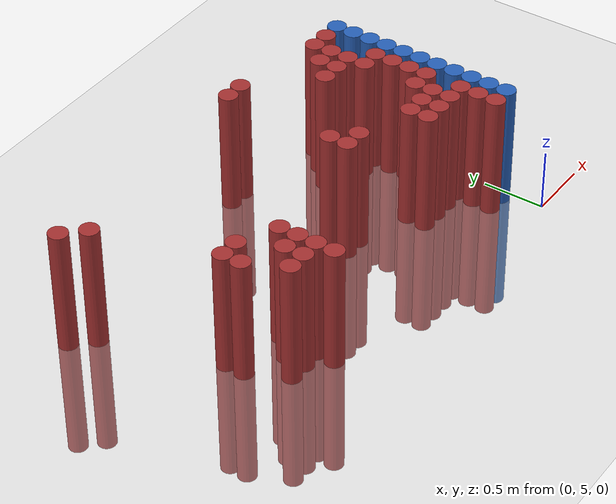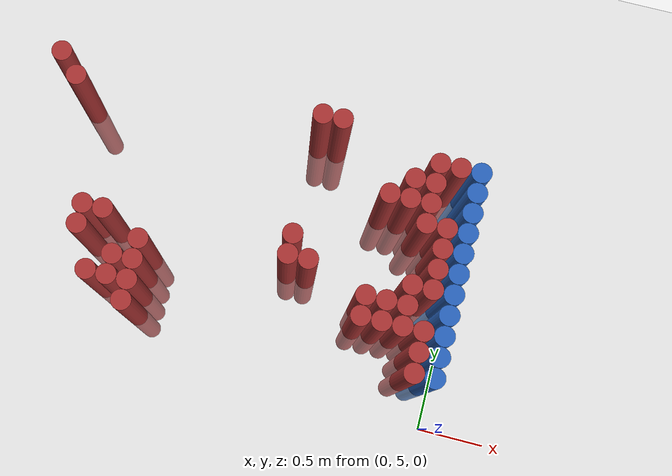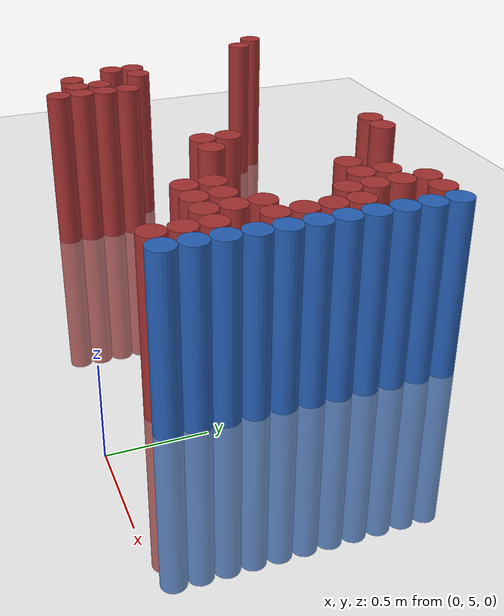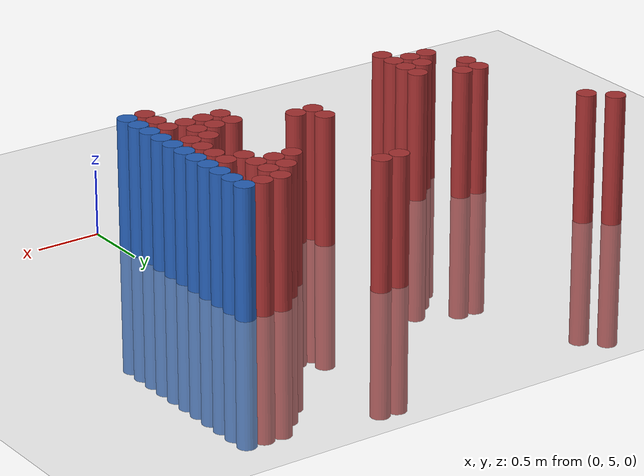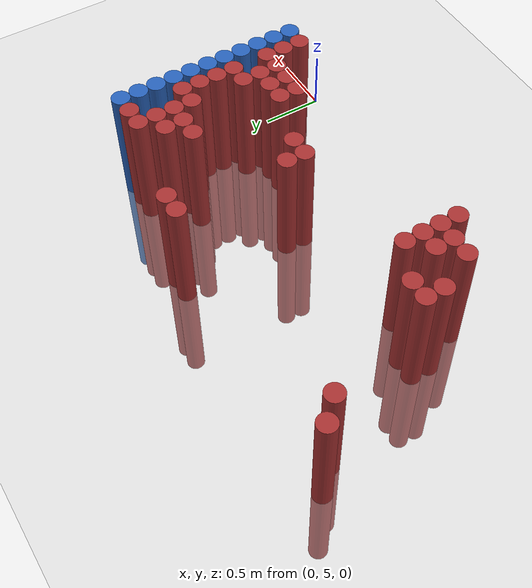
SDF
<sdf version="1.6">
 <world name="default">
  <model name="ground_plane">
   <static>1</static>
   <link name="link">
    <collision name="collision">
     <geometry><plane><normal>0 0 1</normal><size>100 100</size></plane></geometry>
     <surface><friction><ode><mu>100</mu><mu2>50</mu2></ode></friction></surface>
    </collision>
    <visual name="visual">
     <cast_shadows>0</cast_shadows>
     <geometry><plane><normal>0 0 1</normal><size>100 100</size></plane></geometry>
     <material>
      <script><uri>file://media/materials/scripts/gazebo.material</uri><name>Gazebo/Grey</name></script>
     </material>
    </visual>
   </link>
  </model>
  <model name="unit_cylinder_150">
   <static>1</static>
   <pose>-3.225000 6.975000 0.000000 0.000000 0.000000 0.000000</pose>
   <link name="link">
    <inertial>
     <mass>1</mass>
     <inertia><ixx>0.145833</ixx><ixy>0</ixy><ixz>0</ixz><iyy>0.145833</iyy><iyz>0</iyz><izz>0.125</izz></inertia>
    </inertial>
    <collision name="collision">
     <geometry><cylinder><radius>0.075000</radius><length>2</length></cylinder></geometry>
    </collision>
    <visual name="visual">
     <geometry><cylinder><radius>0.075000</radius><length>2</length></cylinder></geometry>
     <material>
      <ambient>0.648000 0.192000 0.192000 1</ambient>
      <diffuse>0.648000 0.192000 0.192000 1</diffuse>
     </material>
     <material>
      <script><name>Gazebo/Grey</name><uri>file://media/materials/scripts/gazebo.material</uri></script>
     </material>
    </visual>
   </link>
  </model>
  <model name="unit_cylinder_151">
   <static>1</static>
   <pose>-3.075000 6.825000 0.000000 0.000000 0.000000 0.000000</pose>
   <link name="link">
    <inertial>
     <mass>1</mass>
     <inertia><ixx>0.145833</ixx><ixy>0</ixy><ixz>0</ixz><iyy>0.145833</iyy><iyz>0</iyz><izz>0.125</izz></inertia>
    </inertial>
    <collision name="collision">
     <geometry><cylinder><radius>0.075000</radius><length>2</length></cylinder></geometry>
    </collision>
    <visual name="visual">
     <geometry><cylinder><radius>0.075000</radius><length>2</length></cylinder></geometry>
     <material>
      <ambient>0.648000 0.192000 0.192000 1</ambient>
      <diffuse>0.648000 0.192000 0.192000 1</diffuse>
     </material>
     <material>
      <script><name>Gazebo/Grey</name><uri>file://media/materials/scripts/gazebo.material</uri></script>
     </material>
    </visual>
   </link>
  </model>
  <model name="unit_cylinder_152">
   <static>1</static>
   <pose>-2.775000 5.775000 0.000000 0.000000 0.000000 0.000000</pose>
   <link name="link">
    <inertial>
     <mass>1</mass>
     <inertia><ixx>0.145833</ixx><ixy>0</ixy><ixz>0</ixz><iyy>0.145833</iyy><iyz>0</iyz><izz>0.125</izz></inertia>
    </inertial>
    <collision name="collision">
     <geometry><cylinder><radius>0.075000</radius><length>2</length></cylinder></geometry>
    </collision>
    <visual name="visual">
     <geometry><cylinder><radius>0.075000</radius><length>2</length></cylinder></geometry>
     <material>
      <ambient>0.648000 0.192000 0.192000 1</ambient>
      <diffuse>0.648000 0.192000 0.192000 1</diffuse>
     </material>
     <material>
      <script><name>Gazebo/Grey</name><uri>file://media/materials/scripts/gazebo.material</uri></script>
     </material>
    </visual>
   </link>
  </model>
  <model name="unit_cylinder_153">
   <static>1</static>
   <pose>-2.775000 5.925000 0.000000 0.000000 0.000000 0.000000</pose>
   <link name="link">
    <inertial>
     <mass>1</mass>
     <inertia><ixx>0.145833</ixx><ixy>0</ixy><ixz>0</ixz><iyy>0.145833</iyy><iyz>0</iyz><izz>0.125</izz></inertia>
    </inertial>
    <collision name="collision">
     <geometry><cylinder><radius>0.075000</radius><length>2</length></cylinder></geometry>
    </collision>
    <visual name="visual">
     <geometry><cylinder><radius>0.075000</radius><length>2</length></cylinder></geometry>
     <material>
      <ambient>0.648000 0.192000 0.192000 1</ambient>
      <diffuse>0.648000 0.192000 0.192000 1</diffuse>
     </material>
     <material>
      <script><name>Gazebo/Grey</name><uri>file://media/materials/scripts/gazebo.material</uri></script>
     </material>
    </visual>
   </link>
  </model>
  <model name="unit_cylinder_154">
   <static>1</static>
   <pose>-2.625000 5.475000 0.000000 0.000000 0.000000 0.000000</pose>
   <link name="link">
    <inertial>
     <mass>1</mass>
     <inertia><ixx>0.145833</ixx><ixy>0</ixy><ixz>0</ixz><iyy>0.145833</iyy><iyz>0</iyz><izz>0.125</izz></inertia>
    </inertial>
    <collision name="collision">
     <geometry><cylinder><radius>0.075000</radius><length>2</length></cylinder></geometry>
    </collision>
    <visual name="visual">
     <geometry><cylinder><radius>0.075000</radius><length>2</length></cylinder></geometry>
     <material>
      <ambient>0.648000 0.192000 0.192000 1</ambient>
      <diffuse>0.648000 0.192000 0.192000 1</diffuse>
     </material>
     <material>
      <script><name>Gazebo/Grey</name><uri>file://media/materials/scripts/gazebo.material</uri></script>
     </material>
    </visual>
   </link>
  </model>
  <model name="unit_cylinder_155">
   <static>1</static>
   <pose>-2.625000 5.925000 0.000000 0.000000 0.000000 0.000000</pose>
   <link name="link">
    <inertial>
     <mass>1</mass>
     <inertia><ixx>0.145833</ixx><ixy>0</ixy><ixz>0</ixz><iyy>0.145833</iyy><iyz>0</iyz><izz>0.125</izz></inertia>
    </inertial>
    <collision name="collision">
     <geometry><cylinder><radius>0.075000</radius><length>2</length></cylinder></geometry>
    </collision>
    <visual name="visual">
     <geometry><cylinder><radius>0.075000</radius><length>2</length></cylinder></geometry>
     <material>
      <ambient>0.648000 0.192000 0.192000 1</ambient>
      <diffuse>0.648000 0.192000 0.192000 1</diffuse>
     </material>
     <material>
      <script><name>Gazebo/Grey</name><uri>file://media/materials/scripts/gazebo.material</uri></script>
     </material>
    </visual>
   </link>
  </model>
  <model name="unit_cylinder_156">
   <static>1</static>
   <pose>-2.475000 5.475000 0.000000 0.000000 0.000000 0.000000</pose>
   <link name="link">
    <inertial>
     <mass>1</mass>
     <inertia><ixx>0.145833</ixx><ixy>0</ixy><ixz>0</ixz><iyy>0.145833</iyy><iyz>0</iyz><izz>0.125</izz></inertia>
    </inertial>
    <collision name="collision">
     <geometry><cylinder><radius>0.075000</radius><length>2</length></cylinder></geometry>
    </collision>
    <visual name="visual">
     <geometry><cylinder><radius>0.075000</radius><length>2</length></cylinder></geometry>
     <material>
      <ambient>0.648000 0.192000 0.192000 1</ambient>
      <diffuse>0.648000 0.192000 0.192000 1</diffuse>
     </material>
     <material>
      <script><name>Gazebo/Grey</name><uri>file://media/materials/scripts/gazebo.material</uri></script>
     </material>
    </visual>
   </link>
  </model>
  <model name="unit_cylinder_157">
   <static>1</static>
   <pose>-2.475000 5.625000 0.000000 0.000000 0.000000 0.000000</pose>
   <link name="link">
    <inertial>
     <mass>1</mass>
     <inertia><ixx>0.145833</ixx><ixy>0</ixy><ixz>0</ixz><iyy>0.145833</iyy><iyz>0</iyz><izz>0.125</izz></inertia>
    </inertial>
    <collision name="collision">
     <geometry><cylinder><radius>0.075000</radius><length>2</length></cylinder></geometry>
    </collision>
    <visual name="visual">
     <geometry><cylinder><radius>0.075000</radius><length>2</length></cylinder></geometry>
     <material>
      <ambient>0.648000 0.192000 0.192000 1</ambient>
      <diffuse>0.648000 0.192000 0.192000 1</diffuse>
     </material>
     <material>
      <script><name>Gazebo/Grey</name><uri>file://media/materials/scripts/gazebo.material</uri></script>
     </material>
    </visual>
   </link>
  </model>
  <model name="unit_cylinder_158">
   <static>1</static>
   <pose>-2.325000 5.325000 0.000000 0.000000 0.000000 0.000000</pose>
   <link name="link">
    <inertial>
     <mass>1</mass>
     <inertia><ixx>0.145833</ixx><ixy>0</ixy><ixz>0</ixz><iyy>0.145833</iyy><iyz>0</iyz><izz>0.125</izz></inertia>
    </inertial>
    <collision name="collision">
     <geometry><cylinder><radius>0.075000</radius><length>2</length></cylinder></geometry>
    </collision>
    <visual name="visual">
     <geometry><cylinder><radius>0.075000</radius><length>2</length></cylinder></geometry>
     <material>
      <ambient>0.648000 0.192000 0.192000 1</ambient>
      <diffuse>0.648000 0.192000 0.192000 1</diffuse>
     </material>
     <material>
      <script><name>Gazebo/Grey</name><uri>file://media/materials/scripts/gazebo.material</uri></script>
     </material>
    </visual>
   </link>
  </model>
  <model name="unit_cylinder_159">
   <static>1</static>
   <pose>-2.325000 5.475000 0.000000 0.000000 0.000000 0.000000</pose>
   <link name="link">
    <inertial>
     <mass>1</mass>
     <inertia><ixx>0.145833</ixx><ixy>0</ixy><ixz>0</ixz><iyy>0.145833</iyy><iyz>0</iyz><izz>0.125</izz></inertia>
    </inertial>
    <collision name="collision">
     <geometry><cylinder><radius>0.075000</radius><length>2</length></cylinder></geometry>
    </collision>
    <visual name="visual">
     <geometry><cylinder><radius>0.075000</radius><length>2</length></cylinder></geometry>
     <material>
      <ambient>0.648000 0.192000 0.192000 1</ambient>
      <diffuse>0.648000 0.192000 0.192000 1</diffuse>
     </material>
     <material>
      <script><name>Gazebo/Grey</name><uri>file://media/materials/scripts/gazebo.material</uri></script>
     </material>
    </visual>
   </link>
  </model>
  <model name="unit_cylinder_160">
   <static>1</static>
   <pose>-2.325000 5.625000 0.000000 0.000000 0.000000 0.000000</pose>
   <link name="link">
    <inertial>
     <mass>1</mass>
     <inertia><ixx>0.145833</ixx><ixy>0</ixy><ixz>0</ixz><iyy>0.145833</iyy><iyz>0</iyz><izz>0.125</izz></inertia>
    </inertial>
    <collision name="collision">
     <geometry><cylinder><radius>0.075000</radius><length>2</length></cylinder></geometry>
    </collision>
    <visual name="visual">
     <geometry><cylinder><radius>0.075000</radius><length>2</length></cylinder></geometry>
     <material>
      <ambient>0.648000 0.192000 0.192000 1</ambient>
      <diffuse>0.648000 0.192000 0.192000 1</diffuse>
     </material>
     <material>
      <script><name>Gazebo/Grey</name><uri>file://media/materials/scripts/gazebo.material</uri></script>
     </material>
    </visual>
   </link>
  </model>
  <model name="unit_cylinder_161">
   <static>1</static>
   <pose>-2.325000 5.775000 0.000000 0.000000 0.000000 0.000000</pose>
   <link name="link">
    <inertial>
     <mass>1</mass>
     <inertia><ixx>0.145833</ixx><ixy>0</ixy><ixz>0</ixz><iyy>0.145833</iyy><iyz>0</iyz><izz>0.125</izz></inertia>
    </inertial>
    <collision name="collision">
     <geometry><cylinder><radius>0.075000</radius><length>2</length></cylinder></geometry>
    </collision>
    <visual name="visual">
     <geometry><cylinder><radius>0.075000</radius><length>2</length></cylinder></geometry>
     <material>
      <ambient>0.648000 0.192000 0.192000 1</ambient>
      <diffuse>0.648000 0.192000 0.192000 1</diffuse>
     </material>
     <material>
      <script><name>Gazebo/Grey</name><uri>file://media/materials/scripts/gazebo.material</uri></script>
     </material>
    </visual>
   </link>
  </model>
  <model name="unit_cylinder_170">
   <static>1</static>
   <pose>-1.275000 5.925000 0.000000 0.000000 0.000000 0.000000</pose>
   <link name="link">
    <inertial>
     <mass>1</mass>
     <inertia><ixx>0.145833</ixx><ixy>0</ixy><ixz>0</ixz><iyy>0.145833</iyy><iyz>0</iyz><izz>0.125</izz></inertia>
    </inertial>
    <collision name="collision">
     <geometry><cylinder><radius>0.075000</radius><length>2</length></cylinder></geometry>
    </collision>
    <visual name="visual">
     <geometry><cylinder><radius>0.075000</radius><length>2</length></cylinder></geometry>
     <material>
      <ambient>0.648000 0.192000 0.192000 1</ambient>
      <diffuse>0.648000 0.192000 0.192000 1</diffuse>
     </material>
     <material>
      <script><name>Gazebo/Grey</name><uri>file://media/materials/scripts/gazebo.material</uri></script>
     </material>
    </visual>
   </link>
  </model>
  <model name="unit_cylinder_171">
   <static>1</static>
   <pose>-1.275000 6.075000 0.000000 0.000000 0.000000 0.000000</pose>
   <link name="link">
    <inertial>
     <mass>1</mass>
     <inertia><ixx>0.145833</ixx><ixy>0</ixy><ixz>0</ixz><iyy>0.145833</iyy><iyz>0</iyz><izz>0.125</izz></inertia>
    </inertial>
    <collision name="collision">
     <geometry><cylinder><radius>0.075000</radius><length>2</length></cylinder></geometry>
    </collision>
    <visual name="visual">
     <geometry><cylinder><radius>0.075000</radius><length>2</length></cylinder></geometry>
     <material>
      <ambient>0.648000 0.192000 0.192000 1</ambient>
      <diffuse>0.648000 0.192000 0.192000 1</diffuse>
     </material>
     <material>
      <script><name>Gazebo/Grey</name><uri>file://media/materials/scripts/gazebo.material</uri></script>
     </material>
    </visual>
   </link>
  </model>
  <model name="unit_cylinder_172">
   <static>1</static>
   <pose>-1.275000 6.975000 0.000000 0.000000 0.000000 0.000000</pose>
   <link name="link">
    <inertial>
     <mass>1</mass>
     <inertia><ixx>0.145833</ixx><ixy>0</ixy><ixz>0</ixz><iyy>0.145833</iyy><iyz>0</iyz><izz>0.125</izz></inertia>
    </inertial>
    <collision name="collision">
     <geometry><cylinder><radius>0.075000</radius><length>2</length></cylinder></geometry>
    </collision>
    <visual name="visual">
     <geometry><cylinder><radius>0.075000</radius><length>2</length></cylinder></geometry>
     <material>
      <ambient>0.648000 0.192000 0.192000 1</ambient>
      <diffuse>0.648000 0.192000 0.192000 1</diffuse>
     </material>
     <material>
      <script><name>Gazebo/Grey</name><uri>file://media/materials/scripts/gazebo.material</uri></script>
     </material>
    </visual>
   </link>
  </model>
  <model name="unit_cylinder_176">
   <static>1</static>
   <pose>-1.125000 5.925000 0.000000 0.000000 0.000000 0.000000</pose>
   <link name="link">
    <inertial>
     <mass>1</mass>
     <inertia><ixx>0.145833</ixx><ixy>0</ixy><ixz>0</ixz><iyy>0.145833</iyy><iyz>0</iyz><izz>0.125</izz></inertia>
    </inertial>
    <collision name="collision">
     <geometry><cylinder><radius>0.075000</radius><length>2</length></cylinder></geometry>
    </collision>
    <visual name="visual">
     <geometry><cylinder><radius>0.075000</radius><length>2</length></cylinder></geometry>
     <material>
      <ambient>0.648000 0.192000 0.192000 1</ambient>
      <diffuse>0.648000 0.192000 0.192000 1</diffuse>
     </material>
     <material>
      <script><name>Gazebo/Grey</name><uri>file://media/materials/scripts/gazebo.material</uri></script>
     </material>
    </visual>
   </link>
  </model>
  <model name="unit_cylinder_177">
   <static>1</static>
   <pose>-1.125000 6.975000 0.000000 0.000000 0.000000 0.000000</pose>
   <link name="link">
    <inertial>
     <mass>1</mass>
     <inertia><ixx>0.145833</ixx><ixy>0</ixy><ixz>0</ixz><iyy>0.145833</iyy><iyz>0</iyz><izz>0.125</izz></inertia>
    </inertial>
    <collision name="collision">
     <geometry><cylinder><radius>0.075000</radius><length>2</length></cylinder></geometry>
    </collision>
    <visual name="visual">
     <geometry><cylinder><radius>0.075000</radius><length>2</length></cylinder></geometry>
     <material>
      <ambient>0.648000 0.192000 0.192000 1</ambient>
      <diffuse>0.648000 0.192000 0.192000 1</diffuse>
     </material>
     <material>
      <script><name>Gazebo/Grey</name><uri>file://media/materials/scripts/gazebo.material</uri></script>
     </material>
    </visual>
   </link>
  </model>
  <model name="unit_cylinder_190">
   <static>1</static>
   <pose>-0.675000 5.625000 0.000000 0.000000 0.000000 0.000000</pose>
   <link name="link">
    <inertial>
     <mass>1</mass>
     <inertia><ixx>0.145833</ixx><ixy>0</ixy><ixz>0</ixz><iyy>0.145833</iyy><iyz>0</iyz><izz>0.125</izz></inertia>
    </inertial>
    <collision name="collision">
     <geometry><cylinder><radius>0.075000</radius><length>2</length></cylinder></geometry>
    </collision>
    <visual name="visual">
     <geometry><cylinder><radius>0.075000</radius><length>2</length></cylinder></geometry>
     <material>
      <ambient>0.648000 0.192000 0.192000 1</ambient>
      <diffuse>0.648000 0.192000 0.192000 1</diffuse>
     </material>
     <material>
      <script><name>Gazebo/Grey</name><uri>file://media/materials/scripts/gazebo.material</uri></script>
     </material>
    </visual>
   </link>
  </model>
  <model name="unit_cylinder_191">
   <static>1</static>
   <pose>-0.675000 5.775000 0.000000 0.000000 0.000000 0.000000</pose>
   <link name="link">
    <inertial>
     <mass>1</mass>
     <inertia><ixx>0.145833</ixx><ixy>0</ixy><ixz>0</ixz><iyy>0.145833</iyy><iyz>0</iyz><izz>0.125</izz></inertia>
    </inertial>
    <collision name="collision">
     <geometry><cylinder><radius>0.075000</radius><length>2</length></cylinder></geometry>
    </collision>
    <visual name="visual">
     <geometry><cylinder><radius>0.075000</radius><length>2</length></cylinder></geometry>
     <material>
      <ambient>0.648000 0.192000 0.192000 1</ambient>
      <diffuse>0.648000 0.192000 0.192000 1</diffuse>
     </material>
     <material>
      <script><name>Gazebo/Grey</name><uri>file://media/materials/scripts/gazebo.material</uri></script>
     </material>
    </visual>
   </link>
  </model>
  <model name="unit_cylinder_192">
   <static>1</static>
   <pose>-0.675000 6.525000 0.000000 0.000000 0.000000 0.000000</pose>
   <link name="link">
    <inertial>
     <mass>1</mass>
     <inertia><ixx>0.145833</ixx><ixy>0</ixy><ixz>0</ixz><iyy>0.145833</iyy><iyz>0</iyz><izz>0.125</izz></inertia>
    </inertial>
    <collision name="collision">
     <geometry><cylinder><radius>0.075000</radius><length>2</length></cylinder></geometry>
    </collision>
    <visual name="visual">
     <geometry><cylinder><radius>0.075000</radius><length>2</length></cylinder></geometry>
     <material>
      <ambient>0.648000 0.192000 0.192000 1</ambient>
      <diffuse>0.648000 0.192000 0.192000 1</diffuse>
     </material>
     <material>
      <script><name>Gazebo/Grey</name><uri>file://media/materials/scripts/gazebo.material</uri></script>
     </material>
    </visual>
   </link>
  </model>
  <model name="unit_cylinder_196">
   <static>1</static>
   <pose>-0.525000 5.625000 0.000000 0.000000 0.000000 0.000000</pose>
   <link name="link">
    <inertial>
     <mass>1</mass>
     <inertia><ixx>0.145833</ixx><ixy>0</ixy><ixz>0</ixz><iyy>0.145833</iyy><iyz>0</iyz><izz>0.125</izz></inertia>
    </inertial>
    <collision name="collision">
     <geometry><cylinder><radius>0.075000</radius><length>2</length></cylinder></geometry>
    </collision>
    <visual name="visual">
     <geometry><cylinder><radius>0.075000</radius><length>2</length></cylinder></geometry>
     <material>
      <ambient>0.648000 0.192000 0.192000 1</ambient>
      <diffuse>0.648000 0.192000 0.192000 1</diffuse>
     </material>
     <material>
      <script><name>Gazebo/Grey</name><uri>file://media/materials/scripts/gazebo.material</uri></script>
     </material>
    </visual>
   </link>
  </model>
  <model name="unit_cylinder_197">
   <static>1</static>
   <pose>-0.525000 5.775000 0.000000 0.000000 0.000000 0.000000</pose>
   <link name="link">
    <inertial>
     <mass>1</mass>
     <inertia><ixx>0.145833</ixx><ixy>0</ixy><ixz>0</ixz><iyy>0.145833</iyy><iyz>0</iyz><izz>0.125</izz></inertia>
    </inertial>
    <collision name="collision">
     <geometry><cylinder><radius>0.075000</radius><length>2</length></cylinder></geometry>
    </collision>
    <visual name="visual">
     <geometry><cylinder><radius>0.075000</radius><length>2</length></cylinder></geometry>
     <material>
      <ambient>0.648000 0.192000 0.192000 1</ambient>
      <diffuse>0.648000 0.192000 0.192000 1</diffuse>
     </material>
     <material>
      <script><name>Gazebo/Grey</name><uri>file://media/materials/scripts/gazebo.material</uri></script>
     </material>
    </visual>
   </link>
  </model>
  <model name="unit_cylinder_198">
   <static>1</static>
   <pose>-0.525000 6.525000 0.000000 0.000000 0.000000 0.000000</pose>
   <link name="link">
    <inertial>
     <mass>1</mass>
     <inertia><ixx>0.145833</ixx><ixy>0</ixy><ixz>0</ixz><iyy>0.145833</iyy><iyz>0</iyz><izz>0.125</izz></inertia>
    </inertial>
    <collision name="collision">
     <geometry><cylinder><radius>0.075000</radius><length>2</length></cylinder></geometry>
    </collision>
    <visual name="visual">
     <geometry><cylinder><radius>0.075000</radius><length>2</length></cylinder></geometry>
     <material>
      <ambient>0.648000 0.192000 0.192000 1</ambient>
      <diffuse>0.648000 0.192000 0.192000 1</diffuse>
     </material>
     <material>
      <script><name>Gazebo/Grey</name><uri>file://media/materials/scripts/gazebo.material</uri></script>
     </material>
    </visual>
   </link>
  </model>
  <model name="unit_cylinder_199">
   <static>1</static>
   <pose>-0.525000 6.675000 0.000000 0.000000 0.000000 0.000000</pose>
   <link name="link">
    <inertial>
     <mass>1</mass>
     <inertia><ixx>0.145833</ixx><ixy>0</ixy><ixz>0</ixz><iyy>0.145833</iyy><iyz>0</iyz><izz>0.125</izz></inertia>
    </inertial>
    <collision name="collision">
     <geometry><cylinder><radius>0.075000</radius><length>2</length></cylinder></geometry>
    </collision>
    <visual name="visual">
     <geometry><cylinder><radius>0.075000</radius><length>2</length></cylinder></geometry>
     <material>
      <ambient>0.648000 0.192000 0.192000 1</ambient>
      <diffuse>0.648000 0.192000 0.192000 1</diffuse>
     </material>
     <material>
      <script><name>Gazebo/Grey</name><uri>file://media/materials/scripts/gazebo.material</uri></script>
     </material>
    </visual>
   </link>
  </model>
  <model name="unit_cylinder_202">
   <static>1</static>
   <pose>-0.375000 5.625000 0.000000 0.000000 0.000000 0.000000</pose>
   <link name="link">
    <inertial>
     <mass>1</mass>
     <inertia><ixx>0.145833</ixx><ixy>0</ixy><ixz>0</ixz><iyy>0.145833</iyy><iyz>0</iyz><izz>0.125</izz></inertia>
    </inertial>
    <collision name="collision">
     <geometry><cylinder><radius>0.075000</radius><length>2</length></cylinder></geometry>
    </collision>
    <visual name="visual">
     <geometry><cylinder><radius>0.075000</radius><length>2</length></cylinder></geometry>
     <material>
      <ambient>0.648000 0.192000 0.192000 1</ambient>
      <diffuse>0.648000 0.192000 0.192000 1</diffuse>
     </material>
     <material>
      <script><name>Gazebo/Grey</name><uri>file://media/materials/scripts/gazebo.material</uri></script>
     </material>
    </visual>
   </link>
  </model>
  <model name="unit_cylinder_203">
   <static>1</static>
   <pose>-0.375000 5.775000 0.000000 0.000000 0.000000 0.000000</pose>
   <link name="link">
    <inertial>
     <mass>1</mass>
     <inertia><ixx>0.145833</ixx><ixy>0</ixy><ixz>0</ixz><iyy>0.145833</iyy><iyz>0</iyz><izz>0.125</izz></inertia>
    </inertial>
    <collision name="collision">
     <geometry><cylinder><radius>0.075000</radius><length>2</length></cylinder></geometry>
    </collision>
    <visual name="visual">
     <geometry><cylinder><radius>0.075000</radius><length>2</length></cylinder></geometry>
     <material>
      <ambient>0.648000 0.192000 0.192000 1</ambient>
      <diffuse>0.648000 0.192000 0.192000 1</diffuse>
     </material>
     <material>
      <script><name>Gazebo/Grey</name><uri>file://media/materials/scripts/gazebo.material</uri></script>
     </material>
    </visual>
   </link>
  </model>
  <model name="unit_cylinder_204">
   <static>1</static>
   <pose>-0.375000 5.925000 0.000000 0.000000 0.000000 0.000000</pose>
   <link name="link">
    <inertial>
     <mass>1</mass>
     <inertia><ixx>0.145833</ixx><ixy>0</ixy><ixz>0</ixz><iyy>0.145833</iyy><iyz>0</iyz><izz>0.125</izz></inertia>
    </inertial>
    <collision name="collision">
     <geometry><cylinder><radius>0.075000</radius><length>2</length></cylinder></geometry>
    </collision>
    <visual name="visual">
     <geometry><cylinder><radius>0.075000</radius><length>2</length></cylinder></geometry>
     <material>
      <ambient>0.648000 0.192000 0.192000 1</ambient>
      <diffuse>0.648000 0.192000 0.192000 1</diffuse>
     </material>
     <material>
      <script><name>Gazebo/Grey</name><uri>file://media/materials/scripts/gazebo.material</uri></script>
     </material>
    </visual>
   </link>
  </model>
  <model name="unit_cylinder_205">
   <static>1</static>
   <pose>-0.375000 6.375000 0.000000 0.000000 0.000000 0.000000</pose>
   <link name="link">
    <inertial>
     <mass>1</mass>
     <inertia><ixx>0.145833</ixx><ixy>0</ixy><ixz>0</ixz><iyy>0.145833</iyy><iyz>0</iyz><izz>0.125</izz></inertia>
    </inertial>
    <collision name="collision">
     <geometry><cylinder><radius>0.075000</radius><length>2</length></cylinder></geometry>
    </collision>
    <visual name="visual">
     <geometry><cylinder><radius>0.075000</radius><length>2</length></cylinder></geometry>
     <material>
      <ambient>0.648000 0.192000 0.192000 1</ambient>
      <diffuse>0.648000 0.192000 0.192000 1</diffuse>
     </material>
     <material>
      <script><name>Gazebo/Grey</name><uri>file://media/materials/scripts/gazebo.material</uri></script>
     </material>
    </visual>
   </link>
  </model>
  <model name="unit_cylinder_206">
   <static>1</static>
   <pose>-0.375000 6.525000 0.000000 0.000000 0.000000 0.000000</pose>
   <link name="link">
    <inertial>
     <mass>1</mass>
     <inertia><ixx>0.145833</ixx><ixy>0</ixy><ixz>0</ixz><iyy>0.145833</iyy><iyz>0</iyz><izz>0.125</izz></inertia>
    </inertial>
    <collision name="collision">
     <geometry><cylinder><radius>0.075000</radius><length>2</length></cylinder></geometry>
    </collision>
    <visual name="visual">
     <geometry><cylinder><radius>0.075000</radius><length>2</length></cylinder></geometry>
     <material>
      <ambient>0.648000 0.192000 0.192000 1</ambient>
      <diffuse>0.648000 0.192000 0.192000 1</diffuse>
     </material>
     <material>
      <script><name>Gazebo/Grey</name><uri>file://media/materials/scripts/gazebo.material</uri></script>
     </material>
    </visual>
   </link>
  </model>
  <model name="unit_cylinder_207">
   <static>1</static>
   <pose>-0.375000 6.675000 0.000000 0.000000 0.000000 0.000000</pose>
   <link name="link">
    <inertial>
     <mass>1</mass>
     <inertia><ixx>0.145833</ixx><ixy>0</ixy><ixz>0</ixz><iyy>0.145833</iyy><iyz>0</iyz><izz>0.125</izz></inertia>
    </inertial>
    <collision name="collision">
     <geometry><cylinder><radius>0.075000</radius><length>2</length></cylinder></geometry>
    </collision>
    <visual name="visual">
     <geometry><cylinder><radius>0.075000</radius><length>2</length></cylinder></geometry>
     <material>
      <ambient>0.648000 0.192000 0.192000 1</ambient>
      <diffuse>0.648000 0.192000 0.192000 1</diffuse>
     </material>
     <material>
      <script><name>Gazebo/Grey</name><uri>file://media/materials/scripts/gazebo.material</uri></script>
     </material>
    </visual>
   </link>
  </model>
  <model name="unit_cylinder_208">
   <static>1</static>
   <pose>-0.375000 6.825000 0.000000 0.000000 0.000000 0.000000</pose>
   <link name="link">
    <inertial>
     <mass>1</mass>
     <inertia><ixx>0.145833</ixx><ixy>0</ixy><ixz>0</ixz><iyy>0.145833</iyy><iyz>0</iyz><izz>0.125</izz></inertia>
    </inertial>
    <collision name="collision">
     <geometry><cylinder><radius>0.075000</radius><length>2</length></cylinder></geometry>
    </collision>
    <visual name="visual">
     <geometry><cylinder><radius>0.075000</radius><length>2</length></cylinder></geometry>
     <material>
      <ambient>0.648000 0.192000 0.192000 1</ambient>
      <diffuse>0.648000 0.192000 0.192000 1</diffuse>
     </material>
     <material>
      <script><name>Gazebo/Grey</name><uri>file://media/materials/scripts/gazebo.material</uri></script>
     </material>
    </visual>
   </link>
  </model>
  <model name="unit_cylinder_210">
   <static>1</static>
   <pose>-0.225000 5.325000 0.000000 0.000000 0.000000 0.000000</pose>
   <link name="link">
    <inertial>
     <mass>1</mass>
     <inertia><ixx>0.145833</ixx><ixy>0</ixy><ixz>0</ixz><iyy>0.145833</iyy><iyz>0</iyz><izz>0.125</izz></inertia>
    </inertial>
    <collision name="collision">
     <geometry><cylinder><radius>0.075000</radius><length>2</length></cylinder></geometry>
    </collision>
    <visual name="visual">
     <geometry><cylinder><radius>0.075000</radius><length>2</length></cylinder></geometry>
     <material>
      <ambient>0.648000 0.192000 0.192000 1</ambient>
      <diffuse>0.648000 0.192000 0.192000 1</diffuse>
     </material>
     <material>
      <script><name>Gazebo/Grey</name><uri>file://media/materials/scripts/gazebo.material</uri></script>
     </material>
    </visual>
   </link>
  </model>
  <model name="unit_cylinder_211">
   <static>1</static>
   <pose>-0.225000 5.475000 0.000000 0.000000 0.000000 0.000000</pose>
   <link name="link">
    <inertial>
     <mass>1</mass>
     <inertia><ixx>0.145833</ixx><ixy>0</ixy><ixz>0</ixz><iyy>0.145833</iyy><iyz>0</iyz><izz>0.125</izz></inertia>
    </inertial>
    <collision name="collision">
     <geometry><cylinder><radius>0.075000</radius><length>2</length></cylinder></geometry>
    </collision>
    <visual name="visual">
     <geometry><cylinder><radius>0.075000</radius><length>2</length></cylinder></geometry>
     <material>
      <ambient>0.648000 0.192000 0.192000 1</ambient>
      <diffuse>0.648000 0.192000 0.192000 1</diffuse>
     </material>
     <material>
      <script><name>Gazebo/Grey</name><uri>file://media/materials/scripts/gazebo.material</uri></script>
     </material>
    </visual>
   </link>
  </model>
  <model name="unit_cylinder_212">
   <static>1</static>
   <pose>-0.225000 5.625000 0.000000 0.000000 0.000000 0.000000</pose>
   <link name="link">
    <inertial>
     <mass>1</mass>
     <inertia><ixx>0.145833</ixx><ixy>0</ixy><ixz>0</ixz><iyy>0.145833</iyy><iyz>0</iyz><izz>0.125</izz></inertia>
    </inertial>
    <collision name="collision">
     <geometry><cylinder><radius>0.075000</radius><length>2</length></cylinder></geometry>
    </collision>
    <visual name="visual">
     <geometry><cylinder><radius>0.075000</radius><length>2</length></cylinder></geometry>
     <material>
      <ambient>0.648000 0.192000 0.192000 1</ambient>
      <diffuse>0.648000 0.192000 0.192000 1</diffuse>
     </material>
     <material>
      <script><name>Gazebo/Grey</name><uri>file://media/materials/scripts/gazebo.material</uri></script>
     </material>
    </visual>
   </link>
  </model>
  <model name="unit_cylinder_213">
   <static>1</static>
   <pose>-0.225000 5.925000 0.000000 0.000000 0.000000 0.000000</pose>
   <link name="link">
    <inertial>
     <mass>1</mass>
     <inertia><ixx>0.145833</ixx><ixy>0</ixy><ixz>0</ixz><iyy>0.145833</iyy><iyz>0</iyz><izz>0.125</izz></inertia>
    </inertial>
    <collision name="collision">
     <geometry><cylinder><radius>0.075000</radius><length>2</length></cylinder></geometry>
    </collision>
    <visual name="visual">
     <geometry><cylinder><radius>0.075000</radius><length>2</length></cylinder></geometry>
     <material>
      <ambient>0.648000 0.192000 0.192000 1</ambient>
      <diffuse>0.648000 0.192000 0.192000 1</diffuse>
     </material>
     <material>
      <script><name>Gazebo/Grey</name><uri>file://media/materials/scripts/gazebo.material</uri></script>
     </material>
    </visual>
   </link>
  </model>
  <model name="unit_cylinder_214">
   <static>1</static>
   <pose>-0.225000 6.075000 0.000000 0.000000 0.000000 0.000000</pose>
   <link name="link">
    <inertial>
     <mass>1</mass>
     <inertia><ixx>0.145833</ixx><ixy>0</ixy><ixz>0</ixz><iyy>0.145833</iyy><iyz>0</iyz><izz>0.125</izz></inertia>
    </inertial>
    <collision name="collision">
     <geometry><cylinder><radius>0.075000</radius><length>2</length></cylinder></geometry>
    </collision>
    <visual name="visual">
     <geometry><cylinder><radius>0.075000</radius><length>2</length></cylinder></geometry>
     <material>
      <ambient>0.648000 0.192000 0.192000 1</ambient>
      <diffuse>0.648000 0.192000 0.192000 1</diffuse>
     </material>
     <material>
      <script><name>Gazebo/Grey</name><uri>file://media/materials/scripts/gazebo.material</uri></script>
     </material>
    </visual>
   </link>
  </model>
  <model name="unit_cylinder_215">
   <static>1</static>
   <pose>-0.225000 6.225000 0.000000 0.000000 0.000000 0.000000</pose>
   <link name="link">
    <inertial>
     <mass>1</mass>
     <inertia><ixx>0.145833</ixx><ixy>0</ixy><ixz>0</ixz><iyy>0.145833</iyy><iyz>0</iyz><izz>0.125</izz></inertia>
    </inertial>
    <collision name="collision">
     <geometry><cylinder><radius>0.075000</radius><length>2</length></cylinder></geometry>
    </collision>
    <visual name="visual">
     <geometry><cylinder><radius>0.075000</radius><length>2</length></cylinder></geometry>
     <material>
      <ambient>0.648000 0.192000 0.192000 1</ambient>
      <diffuse>0.648000 0.192000 0.192000 1</diffuse>
     </material>
     <material>
      <script><name>Gazebo/Grey</name><uri>file://media/materials/scripts/gazebo.material</uri></script>
     </material>
    </visual>
   </link>
  </model>
  <model name="unit_cylinder_216">
   <static>1</static>
   <pose>-0.225000 6.375000 0.000000 0.000000 0.000000 0.000000</pose>
   <link name="link">
    <inertial>
     <mass>1</mass>
     <inertia><ixx>0.145833</ixx><ixy>0</ixy><ixz>0</ixz><iyy>0.145833</iyy><iyz>0</iyz><izz>0.125</izz></inertia>
    </inertial>
    <collision name="collision">
     <geometry><cylinder><radius>0.075000</radius><length>2</length></cylinder></geometry>
    </collision>
    <visual name="visual">
     <geometry><cylinder><radius>0.075000</radius><length>2</length></cylinder></geometry>
     <material>
      <ambient>0.648000 0.192000 0.192000 1</ambient>
      <diffuse>0.648000 0.192000 0.192000 1</diffuse>
     </material>
     <material>
      <script><name>Gazebo/Grey</name><uri>file://media/materials/scripts/gazebo.material</uri></script>
     </material>
    </visual>
   </link>
  </model>
  <model name="unit_cylinder_217">
   <static>1</static>
   <pose>-0.225000 6.825000 0.000000 0.000000 0.000000 0.000000</pose>
   <link name="link">
    <inertial>
     <mass>1</mass>
     <inertia><ixx>0.145833</ixx><ixy>0</ixy><ixz>0</ixz><iyy>0.145833</iyy><iyz>0</iyz><izz>0.125</izz></inertia>
    </inertial>
    <collision name="collision">
     <geometry><cylinder><radius>0.075000</radius><length>2</length></cylinder></geometry>
    </collision>
    <visual name="visual">
     <geometry><cylinder><radius>0.075000</radius><length>2</length></cylinder></geometry>
     <material>
      <ambient>0.648000 0.192000 0.192000 1</ambient>
      <diffuse>0.648000 0.192000 0.192000 1</diffuse>
     </material>
     <material>
      <script><name>Gazebo/Grey</name><uri>file://media/materials/scripts/gazebo.material</uri></script>
     </material>
    </visual>
   </link>
  </model>
  <model name="unit_cylinder_223">
   <static>1</static>
   <pose>-0.075000 5.325000 0.000000 0.000000 0.000000 0.000000</pose>
   <link name="link">
    <inertial>
     <mass>1</mass>
     <inertia><ixx>0.145833</ixx><ixy>0</ixy><ixz>0</ixz><iyy>0.145833</iyy><iyz>0</iyz><izz>0.125</izz></inertia>
    </inertial>
    <collision name="collision">
     <geometry><cylinder><radius>0.075000</radius><length>2</length></cylinder></geometry>
    </collision>
    <visual name="visual">
     <geometry><cylinder><radius>0.075000</radius><length>2</length></cylinder></geometry>
     <material>
      <ambient>0.152000 0.379000 0.720000 1</ambient>
      <diffuse>0.152000 0.379000 0.720000 1</diffuse>
     </material>
     <material>
      <script><name>Gazebo/Grey</name><uri>file://media/materials/scripts/gazebo.material</uri></script>
     </material>
    </visual>
   </link>
  </model>
  <model name="unit_cylinder_224">
   <static>1</static>
   <pose>-0.075000 5.475000 0.000000 0.000000 0.000000 0.000000</pose>
   <link name="link">
    <inertial>
     <mass>1</mass>
     <inertia><ixx>0.145833</ixx><ixy>0</ixy><ixz>0</ixz><iyy>0.145833</iyy><iyz>0</iyz><izz>0.125</izz></inertia>
    </inertial>
    <collision name="collision">
     <geometry><cylinder><radius>0.075000</radius><length>2</length></cylinder></geometry>
    </collision>
    <visual name="visual">
     <geometry><cylinder><radius>0.075000</radius><length>2</length></cylinder></geometry>
     <material>
      <ambient>0.152000 0.379000 0.720000 1</ambient>
      <diffuse>0.152000 0.379000 0.720000 1</diffuse>
     </material>
     <material>
      <script><name>Gazebo/Grey</name><uri>file://media/materials/scripts/gazebo.material</uri></script>
     </material>
    </visual>
   </link>
  </model>
  <model name="unit_cylinder_225">
   <static>1</static>
   <pose>-0.075000 5.625000 0.000000 0.000000 0.000000 0.000000</pose>
   <link name="link">
    <inertial>
     <mass>1</mass>
     <inertia><ixx>0.145833</ixx><ixy>0</ixy><ixz>0</ixz><iyy>0.145833</iyy><iyz>0</iyz><izz>0.125</izz></inertia>
    </inertial>
    <collision name="collision">
     <geometry><cylinder><radius>0.075000</radius><length>2</length></cylinder></geometry>
    </collision>
    <visual name="visual">
     <geometry><cylinder><radius>0.075000</radius><length>2</length></cylinder></geometry>
     <material>
      <ambient>0.152000 0.379000 0.720000 1</ambient>
      <diffuse>0.152000 0.379000 0.720000 1</diffuse>
     </material>
     <material>
      <script><name>Gazebo/Grey</name><uri>file://media/materials/scripts/gazebo.material</uri></script>
     </material>
    </visual>
   </link>
  </model>
  <model name="unit_cylinder_226">
   <static>1</static>
   <pose>-0.075000 5.775000 0.000000 0.000000 0.000000 0.000000</pose>
   <link name="link">
    <inertial>
     <mass>1</mass>
     <inertia><ixx>0.145833</ixx><ixy>0</ixy><ixz>0</ixz><iyy>0.145833</iyy><iyz>0</iyz><izz>0.125</izz></inertia>
    </inertial>
    <collision name="collision">
     <geometry><cylinder><radius>0.075000</radius><length>2</length></cylinder></geometry>
    </collision>
    <visual name="visual">
     <geometry><cylinder><radius>0.075000</radius><length>2</length></cylinder></geometry>
     <material>
      <ambient>0.152000 0.379000 0.720000 1</ambient>
      <diffuse>0.152000 0.379000 0.720000 1</diffuse>
     </material>
     <material>
      <script><name>Gazebo/Grey</name><uri>file://media/materials/scripts/gazebo.material</uri></script>
     </material>
    </visual>
   </link>
  </model>
  <model name="unit_cylinder_227">
   <static>1</static>
   <pose>-0.075000 5.925000 0.000000 0.000000 0.000000 0.000000</pose>
   <link name="link">
    <inertial>
     <mass>1</mass>
     <inertia><ixx>0.145833</ixx><ixy>0</ixy><ixz>0</ixz><iyy>0.145833</iyy><iyz>0</iyz><izz>0.125</izz></inertia>
    </inertial>
    <collision name="collision">
     <geometry><cylinder><radius>0.075000</radius><length>2</length></cylinder></geometry>
    </collision>
    <visual name="visual">
     <geometry><cylinder><radius>0.075000</radius><length>2</length></cylinder></geometry>
     <material>
      <ambient>0.152000 0.379000 0.720000 1</ambient>
      <diffuse>0.152000 0.379000 0.720000 1</diffuse>
     </material>
     <material>
      <script><name>Gazebo/Grey</name><uri>file://media/materials/scripts/gazebo.material</uri></script>
     </material>
    </visual>
   </link>
  </model>
  <model name="unit_cylinder_228">
   <static>1</static>
   <pose>-0.075000 6.075000 0.000000 0.000000 0.000000 0.000000</pose>
   <link name="link">
    <inertial>
     <mass>1</mass>
     <inertia><ixx>0.145833</ixx><ixy>0</ixy><ixz>0</ixz><iyy>0.145833</iyy><iyz>0</iyz><izz>0.125</izz></inertia>
    </inertial>
    <collision name="collision">
     <geometry><cylinder><radius>0.075000</radius><length>2</length></cylinder></geometry>
    </collision>
    <visual name="visual">
     <geometry><cylinder><radius>0.075000</radius><length>2</length></cylinder></geometry>
     <material>
      <ambient>0.152000 0.379000 0.720000 1</ambient>
      <diffuse>0.152000 0.379000 0.720000 1</diffuse>
     </material>
     <material>
      <script><name>Gazebo/Grey</name><uri>file://media/materials/scripts/gazebo.material</uri></script>
     </material>
    </visual>
   </link>
  </model>
  <model name="unit_cylinder_229">
   <static>1</static>
   <pose>-0.075000 6.225000 0.000000 0.000000 0.000000 0.000000</pose>
   <link name="link">
    <inertial>
     <mass>1</mass>
     <inertia><ixx>0.145833</ixx><ixy>0</ixy><ixz>0</ixz><iyy>0.145833</iyy><iyz>0</iyz><izz>0.125</izz></inertia>
    </inertial>
    <collision name="collision">
     <geometry><cylinder><radius>0.075000</radius><length>2</length></cylinder></geometry>
    </collision>
    <visual name="visual">
     <geometry><cylinder><radius>0.075000</radius><length>2</length></cylinder></geometry>
     <material>
      <ambient>0.152000 0.379000 0.720000 1</ambient>
      <diffuse>0.152000 0.379000 0.720000 1</diffuse>
     </material>
     <material>
      <script><name>Gazebo/Grey</name><uri>file://media/materials/scripts/gazebo.material</uri></script>
     </material>
    </visual>
   </link>
  </model>
  <model name="unit_cylinder_230">
   <static>1</static>
   <pose>-0.075000 6.375000 0.000000 0.000000 0.000000 0.000000</pose>
   <link name="link">
    <inertial>
     <mass>1</mass>
     <inertia><ixx>0.145833</ixx><ixy>0</ixy><ixz>0</ixz><iyy>0.145833</iyy><iyz>0</iyz><izz>0.125</izz></inertia>
    </inertial>
    <collision name="collision">
     <geometry><cylinder><radius>0.075000</radius><length>2</length></cylinder></geometry>
    </collision>
    <visual name="visual">
     <geometry><cylinder><radius>0.075000</radius><length>2</length></cylinder></geometry>
     <material>
      <ambient>0.152000 0.379000 0.720000 1</ambient>
      <diffuse>0.152000 0.379000 0.720000 1</diffuse>
     </material>
     <material>
      <script><name>Gazebo/Grey</name><uri>file://media/materials/scripts/gazebo.material</uri></script>
     </material>
    </visual>
   </link>
  </model>
  <model name="unit_cylinder_231">
   <static>1</static>
   <pose>-0.075000 6.525000 0.000000 0.000000 0.000000 0.000000</pose>
   <link name="link">
    <inertial>
     <mass>1</mass>
     <inertia><ixx>0.145833</ixx><ixy>0</ixy><ixz>0</ixz><iyy>0.145833</iyy><iyz>0</iyz><izz>0.125</izz></inertia>
    </inertial>
    <collision name="collision">
     <geometry><cylinder><radius>0.075000</radius><length>2</length></cylinder></geometry>
    </collision>
    <visual name="visual">
     <geometry><cylinder><radius>0.075000</radius><length>2</length></cylinder></geometry>
     <material>
      <ambient>0.152000 0.379000 0.720000 1</ambient>
      <diffuse>0.152000 0.379000 0.720000 1</diffuse>
     </material>
     <material>
      <script><name>Gazebo/Grey</name><uri>file://media/materials/scripts/gazebo.material</uri></script>
     </material>
    </visual>
   </link>
  </model>
  <model name="unit_cylinder_232">
   <static>1</static>
   <pose>-0.075000 6.675000 0.000000 0.000000 0.000000 0.000000</pose>
   <link name="link">
    <inertial>
     <mass>1</mass>
     <inertia><ixx>0.145833</ixx><ixy>0</ixy><ixz>0</ixz><iyy>0.145833</iyy><iyz>0</iyz><izz>0.125</izz></inertia>
    </inertial>
    <collision name="collision">
     <geometry><cylinder><radius>0.075000</radius><length>2</length></cylinder></geometry>
    </collision>
    <visual name="visual">
     <geometry><cylinder><radius>0.075000</radius><length>2</length></cylinder></geometry>
     <material>
      <ambient>0.152000 0.379000 0.720000 1</ambient>
      <diffuse>0.152000 0.379000 0.720000 1</diffuse>
     </material>
     <material>
      <script><name>Gazebo/Grey</name><uri>file://media/materials/scripts/gazebo.material</uri></script>
     </material>
    </visual>
   </link>
  </model>
  <model name="unit_cylinder_233">
   <static>1</static>
   <pose>-0.075000 6.825000 0.000000 0.000000 0.000000 0.000000</pose>
   <link name="link">
    <inertial>
     <mass>1</mass>
     <inertia><ixx>0.145833</ixx><ixy>0</ixy><ixz>0</ixz><iyy>0.145833</iyy><iyz>0</iyz><izz>0.125</izz></inertia>
    </inertial>
    <collision name="collision">
     <geometry><cylinder><radius>0.075000</radius><length>2</length></cylinder></geometry>
    </collision>
    <visual name="visual">
     <geometry><cylinder><radius>0.075000</radius><length>2</length></cylinder></geometry>
     <material>
      <ambient>0.152000 0.379000 0.720000 1</ambient>
      <diffuse>0.152000 0.379000 0.720000 1</diffuse>
     </material>
     <material>
      <script><name>Gazebo/Grey</name><uri>file://media/materials/scripts/gazebo.material</uri></script>
     </material>
    </visual>
   </link>
  </model>
 </world>
</sdf>
